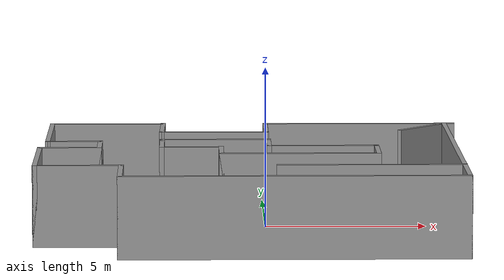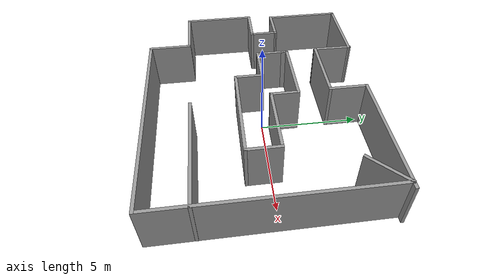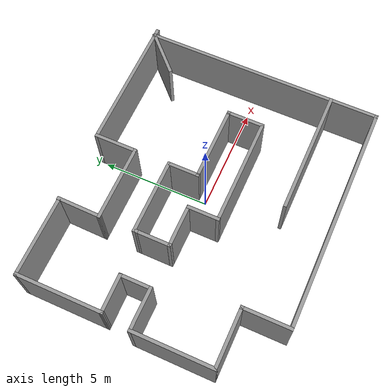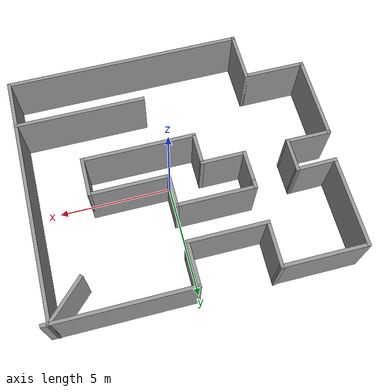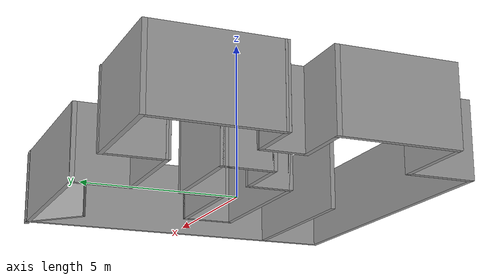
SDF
<?xml version='1.0'?>
<sdf version='1.7'>
  <model name='test2'>
    <pose>-0.407129 -0.162862 0 0 -0 0</pose>
    <link name='Wall_10'>
      <collision name='Wall_10_Collision'>
        <geometry>
          <box>
            <size>1.75 0.15 2.5</size>
          </box>
        </geometry>
        <pose>0 0 1.25 0 -0 0</pose>
      </collision>
      <visual name='Wall_10_Visual'>
        <pose>0 0 1.25 0 -0 0</pose>
        <geometry>
          <box>
            <size>1.75 0.15 2.5</size>
          </box>
        </geometry>
        <material>
          <script>
            <uri>file://media/materials/scripts/gazebo.material</uri>
            <name>Gazebo/Grey</name>
          </script>
          <ambient>1 1 1 1</ambient>
        </material>
        <meta>
          <layer>0</layer>
        </meta>
      </visual>
      <pose>3.88635 -0.216287 0 0 -0 -1.5708</pose>
    </link>
    <link name='Wall_11'>
      <collision name='Wall_11_Collision'>
        <geometry>
          <box>
            <size>5 0.15 2.5</size>
          </box>
        </geometry>
        <pose>0 0 1.25 0 -0 0</pose>
      </collision>
      <visual name='Wall_11_Visual'>
        <pose>0 0 1.25 0 -0 0</pose>
        <geometry>
          <box>
            <size>5 0.15 2.5</size>
          </box>
        </geometry>
        <material>
          <script>
            <uri>file://media/materials/scripts/gazebo.material</uri>
            <name>Gazebo/Grey</name>
          </script>
          <ambient>1 1 1 1</ambient>
        </material>
        <meta>
          <layer>0</layer>
        </meta>
      </visual>
      <pose>1.46135 -1.01629 0 0 -0 3.14159</pose>
    </link>
    <link name='Wall_12'>
      <collision name='Wall_12_Collision'>
        <geometry>
          <box>
            <size>1.5 0.15 2.5</size>
          </box>
        </geometry>
        <pose>0 0 1.25 0 -0 0</pose>
      </collision>
      <visual name='Wall_12_Visual'>
        <pose>0 0 1.25 0 -0 0</pose>
        <geometry>
          <box>
            <size>1.5 0.15 2.5</size>
          </box>
        </geometry>
        <material>
          <script>
            <uri>file://media/materials/scripts/gazebo.material</uri>
            <name>Gazebo/Grey</name>
          </script>
          <ambient>1 1 1 1</ambient>
        </material>
        <meta>
          <layer>0</layer>
        </meta>
      </visual>
      <pose>-0.96365 -0.341287 0 0 -0 1.5708</pose>
    </link>
    <link name='Wall_13'>
      <collision name='Wall_13_Collision'>
        <geometry>
          <box>
            <size>2 0.15 2.5</size>
          </box>
        </geometry>
        <pose>0 0 1.25 0 -0 0</pose>
      </collision>
      <visual name='Wall_13_Visual'>
        <pose>0 0 1.25 0 -0 0</pose>
        <geometry>
          <box>
            <size>2 0.15 2.5</size>
          </box>
        </geometry>
        <material>
          <script>
            <uri>file://media/materials/scripts/gazebo.material</uri>
            <name>Gazebo/Grey</name>
          </script>
          <ambient>1 1 1 1</ambient>
        </material>
        <meta>
          <layer>0</layer>
        </meta>
      </visual>
      <pose>-1.88865 0.333713 0 0 -0 3.14159</pose>
    </link>
    <link name='Wall_14'>
      <collision name='Wall_14_Collision'>
        <geometry>
          <box>
            <size>1.5 0.15 2.5</size>
          </box>
        </geometry>
        <pose>0 0 1.25 0 -0 0</pose>
      </collision>
      <visual name='Wall_14_Visual'>
        <pose>0 0 1.25 0 -0 0</pose>
        <geometry>
          <box>
            <size>1.5 0.15 2.5</size>
          </box>
        </geometry>
        <material>
          <script>
            <uri>file://media/materials/scripts/gazebo.material</uri>
            <name>Gazebo/Grey</name>
          </script>
          <ambient>1 1 1 1</ambient>
        </material>
        <meta>
          <layer>0</layer>
        </meta>
      </visual>
      <pose>-2.81365 1.00871 0 0 -0 1.5708</pose>
    </link>
    <link name='Wall_18'>
      <collision name='Wall_18_Collision'>
        <geometry>
          <box>
            <size>1.5 0.15 2.5</size>
          </box>
        </geometry>
        <pose>0 0 1.25 0 -0 0</pose>
      </collision>
      <visual name='Wall_18_Visual'>
        <pose>0 0 1.25 0 -0 0</pose>
        <geometry>
          <box>
            <size>1.5 0.15 2.5</size>
          </box>
        </geometry>
        <material>
          <script>
            <uri>file://media/materials/scripts/gazebo.material</uri>
            <name>Gazebo/Grey</name>
          </script>
          <ambient>1 1 1 1</ambient>
        </material>
        <meta>
          <layer>0</layer>
        </meta>
      </visual>
      <pose>-4.75576 0.92222 0 0 -0 -1.5708</pose>
    </link>
    <link name='Wall_19'>
      <collision name='Wall_19_Collision'>
        <geometry>
          <box>
            <size>2 0.15 2.5</size>
          </box>
        </geometry>
        <pose>0 0 1.25 0 -0 0</pose>
      </collision>
      <visual name='Wall_19_Visual'>
        <pose>0 0 1.25 0 -0 0</pose>
        <geometry>
          <box>
            <size>2 0.15 2.5</size>
          </box>
        </geometry>
        <material>
          <script>
            <uri>file://media/materials/scripts/gazebo.material</uri>
            <name>Gazebo/Grey</name>
          </script>
          <ambient>1 1 1 1</ambient>
        </material>
        <meta>
          <layer>0</layer>
        </meta>
      </visual>
      <pose>-5.68076 0.24722 0 0 -0 3.14159</pose>
    </link>
    <link name='Wall_20'>
      <collision name='Wall_20_Collision'>
        <geometry>
          <box>
            <size>3.75 0.15 2.5</size>
          </box>
        </geometry>
        <pose>0 0 1.25 0 -0 0</pose>
      </collision>
      <visual name='Wall_20_Visual'>
        <pose>0 0 1.25 0 -0 0</pose>
        <geometry>
          <box>
            <size>3.75 0.15 2.5</size>
          </box>
        </geometry>
        <material>
          <script>
            <uri>file://media/materials/scripts/gazebo.material</uri>
            <name>Gazebo/Grey</name>
          </script>
          <ambient>1 1 1 1</ambient>
        </material>
        <meta>
          <layer>0</layer>
        </meta>
      </visual>
      <pose>-6.60576 -1.55278 0 0 -0 -1.5708</pose>
    </link>
    <link name='Wall_21'>
      <collision name='Wall_21_Collision'>
        <geometry>
          <box>
            <size>2.75 0.15 2.5</size>
          </box>
        </geometry>
        <pose>0 0 1.25 0 -0 0</pose>
      </collision>
      <visual name='Wall_21_Visual'>
        <pose>0 0 1.25 0 -0 0</pose>
        <geometry>
          <box>
            <size>2.75 0.15 2.5</size>
          </box>
        </geometry>
        <material>
          <script>
            <uri>file://media/materials/scripts/gazebo.material</uri>
            <name>Gazebo/Grey</name>
          </script>
          <ambient>1 1 1 1</ambient>
        </material>
        <meta>
          <layer>0</layer>
        </meta>
      </visual>
      <pose>-5.30576 -3.35278 0 0 -0 0</pose>
    </link>
    <link name='Wall_22'>
      <collision name='Wall_22_Collision'>
        <geometry>
          <box>
            <size>2.25 0.15 2.5</size>
          </box>
        </geometry>
        <pose>0 0 1.25 0 -0 0</pose>
      </collision>
      <visual name='Wall_22_Visual'>
        <pose>0 0 1.25 0 -0 0</pose>
        <geometry>
          <box>
            <size>2.25 0.15 2.5</size>
          </box>
        </geometry>
        <material>
          <script>
            <uri>file://media/materials/scripts/gazebo.material</uri>
            <name>Gazebo/Grey</name>
          </script>
          <ambient>1 1 1 1</ambient>
        </material>
        <meta>
          <layer>0</layer>
        </meta>
      </visual>
      <pose>-4.00576 -4.40278 0 0 -0 -1.5708</pose>
    </link>
    <link name='Wall_23'>
      <collision name='Wall_23_Collision'>
        <geometry>
          <box>
            <size>10.5 0.15 2.5</size>
          </box>
        </geometry>
        <pose>0 0 1.25 0 -0 0</pose>
      </collision>
      <visual name='Wall_23_Visual'>
        <pose>0 0 1.25 0 -0 0</pose>
        <geometry>
          <box>
            <size>10.5 0.15 2.5</size>
          </box>
        </geometry>
        <material>
          <script>
            <uri>file://media/materials/scripts/gazebo.material</uri>
            <name>Gazebo/Grey</name>
          </script>
          <ambient>1 1 1 1</ambient>
        </material>
        <meta>
          <layer>0</layer>
        </meta>
      </visual>
      <pose>1.16924 -5.45278 0 0 -0 0</pose>
    </link>
    <link name='Wall_24'>
      <collision name='Wall_24_Collision'>
        <geometry>
          <box>
            <size>11 0.15 2.5</size>
          </box>
        </geometry>
        <pose>0 0 1.25 0 -0 0</pose>
      </collision>
      <visual name='Wall_24_Visual'>
        <pose>0 0 1.25 0 -0 0</pose>
        <geometry>
          <box>
            <size>11 0.15 2.5</size>
          </box>
        </geometry>
        <material>
          <script>
            <uri>file://media/materials/scripts/gazebo.material</uri>
            <name>Gazebo/Grey</name>
          </script>
          <ambient>1 1 1 1</ambient>
        </material>
        <meta>
          <layer>0</layer>
        </meta>
      </visual>
      <pose>6.34424 -0.02778 0 0 -0 1.5708</pose>
    </link>
    <link name='Wall_26'>
      <collision name='Wall_26_Collision'>
        <geometry>
          <box>
            <size>3.5 0.15 2.5</size>
          </box>
        </geometry>
        <pose>0 0 1.25 0 -0 0</pose>
      </collision>
      <visual name='Wall_26_Visual'>
        <pose>0 0 1.25 0 -0 0</pose>
        <geometry>
          <box>
            <size>3.5 0.15 2.5</size>
          </box>
        </geometry>
        <material>
          <script>
            <uri>file://media/materials/scripts/gazebo.material</uri>
            <name>Gazebo/Grey</name>
          </script>
          <ambient>1 1 1 1</ambient>
        </material>
        <meta>
          <layer>0</layer>
        </meta>
      </visual>
      <pose>-1.13865 1.93371 0 0 -0 3.14159</pose>
    </link>
    <link name='Wall_27'>
      <collision name='Wall_27_Collision'>
        <geometry>
          <box>
            <size>0.4 0.15 2.5</size>
          </box>
        </geometry>
        <pose>0 0 1.25 0 -0 0</pose>
      </collision>
      <visual name='Wall_27_Visual'>
        <pose>0 0 1.25 0 -0 0</pose>
        <geometry>
          <box>
            <size>0.4 0.15 2.5</size>
          </box>
        </geometry>
        <material>
          <script>
            <uri>file://media/materials/scripts/gazebo.material</uri>
            <name>Gazebo/Grey</name>
          </script>
          <ambient>1 1 1 1</ambient>
        </material>
        <meta>
          <layer>0</layer>
        </meta>
      </visual>
      <pose>-2.81365 1.80871 0 0 -0 -1.5708</pose>
    </link>
    <link name='Wall_29'>
      <collision name='Wall_29_Collision'>
        <geometry>
          <box>
            <size>3.5 0.15 2.5</size>
          </box>
        </geometry>
        <pose>0 0 1.25 0 -0 0</pose>
      </collision>
      <visual name='Wall_29_Visual'>
        <pose>0 0 1.25 0 -0 0</pose>
        <geometry>
          <box>
            <size>3.5 0.15 2.5</size>
          </box>
        </geometry>
        <material>
          <script>
            <uri>file://media/materials/scripts/gazebo.material</uri>
            <name>Gazebo/Grey</name>
          </script>
          <ambient>1 1 1 1</ambient>
        </material>
        <meta>
          <layer>0</layer>
        </meta>
      </visual>
      <pose>-1.16924 3.54041 0 0 -0 3.14159</pose>
    </link>
    <link name='Wall_30'>
      <collision name='Wall_30_Collision'>
        <geometry>
          <box>
            <size>2.06142 0.15 2.5</size>
          </box>
        </geometry>
        <pose>0 0 1.25 0 -0 0</pose>
      </collision>
      <visual name='Wall_30_Visual'>
        <pose>0 0 1.25 0 -0 0</pose>
        <geometry>
          <box>
            <size>2.06142 0.15 2.5</size>
          </box>
        </geometry>
        <material>
          <script>
            <uri>file://media/materials/scripts/gazebo.material</uri>
            <name>Gazebo/Grey</name>
          </script>
          <ambient>1 1 1 1</ambient>
        </material>
        <meta>
          <layer>0</layer>
        </meta>
      </visual>
      <pose>-2.82895 4.496 0 0 -0 1.55479</pose>
    </link>
    <link name='Wall_31'>
      <collision name='Wall_31_Collision'>
        <geometry>
          <box>
            <size>3.75 0.15 2.5</size>
          </box>
        </geometry>
        <pose>0 0 1.25 0 -0 0</pose>
      </collision>
      <visual name='Wall_31_Visual'>
        <pose>0 0 1.25 0 -0 0</pose>
        <geometry>
          <box>
            <size>3.75 0.15 2.5</size>
          </box>
        </geometry>
        <material>
          <script>
            <uri>file://media/materials/scripts/gazebo.material</uri>
            <name>Gazebo/Grey</name>
          </script>
          <ambient>1 1 1 1</ambient>
        </material>
        <meta>
          <layer>0</layer>
        </meta>
      </visual>
      <pose>-4.61365 5.421 0 0 -0 3.14159</pose>
    </link>
    <link name='Wall_33'>
      <collision name='Wall_33_Collision'>
        <geometry>
          <box>
            <size>4 0.15 2.5</size>
          </box>
        </geometry>
        <pose>0 0 1.25 0 -0 0</pose>
      </collision>
      <visual name='Wall_33_Visual'>
        <pose>0 0 1.25 0 -0 0</pose>
        <geometry>
          <box>
            <size>4 0.15 2.5</size>
          </box>
        </geometry>
        <material>
          <script>
            <uri>file://media/materials/scripts/gazebo.material</uri>
            <name>Gazebo/Grey</name>
          </script>
          <ambient>1 1 1 1</ambient>
        </material>
        <meta>
          <layer>0</layer>
        </meta>
      </visual>
      <pose>-6.41365 3.496 0 0 -0 -1.5708</pose>
    </link>
    <link name='Wall_34'>
      <collision name='Wall_34_Collision'>
        <geometry>
          <box>
            <size>1.8081 0.15 2.5</size>
          </box>
        </geometry>
        <pose>0 0 1.25 0 -0 0</pose>
      </collision>
      <visual name='Wall_34_Visual'>
        <pose>0 0 1.25 0 -0 0</pose>
        <geometry>
          <box>
            <size>1.8081 0.15 2.5</size>
          </box>
        </geometry>
        <material>
          <script>
            <uri>file://media/materials/scripts/gazebo.material</uri>
            <name>Gazebo/Grey</name>
          </script>
          <ambient>1 1 1 1</ambient>
        </material>
        <meta>
          <layer>0</layer>
        </meta>
      </visual>
      <pose>-5.5847 1.58411 0 0 -0 0.015815</pose>
    </link>
    <link name='Wall_36'>
      <collision name='Wall_36_Collision'>
        <geometry>
          <box>
            <size>5.75 0.15 2.5</size>
          </box>
        </geometry>
        <pose>0 0 1.25 0 -0 0</pose>
      </collision>
      <visual name='Wall_36_Visual'>
        <pose>0 0 1.25 0 -0 0</pose>
        <geometry>
          <box>
            <size>5.75 0.15 2.5</size>
          </box>
        </geometry>
        <material>
          <script>
            <uri>file://media/materials/scripts/gazebo.material</uri>
            <name>Gazebo/Grey</name>
          </script>
          <ambient>1 1 1 1</ambient>
        </material>
        <meta>
          <layer>0</layer>
        </meta>
      </visual>
      <pose>3.55048 -3.32781 0 0 -0 0</pose>
    </link>
    <link name='Wall_39'>
      <collision name='Wall_39_Collision'>
        <geometry>
          <box>
            <size>2.25 0.15 2.5</size>
          </box>
        </geometry>
        <pose>0 0 1.25 0 -0 0</pose>
      </collision>
      <visual name='Wall_39_Visual'>
        <pose>0 0 1.25 0 -0 0</pose>
        <geometry>
          <box>
            <size>2.25 0.15 2.5</size>
          </box>
        </geometry>
        <material>
          <script>
            <uri>file://media/materials/scripts/gazebo.material</uri>
            <name>Gazebo/Grey</name>
          </script>
          <ambient>1 1 1 1</ambient>
        </material>
        <meta>
          <layer>0</layer>
        </meta>
      </visual>
      <pose>5.60178 4.65476 0 0 -0 -2.35619</pose>
    </link>
    <link name='Wall_4'>
      <collision name='Wall_4_Collision'>
        <geometry>
          <box>
            <size>6.25 0.15 2.5</size>
          </box>
        </geometry>
        <pose>0 0 1.25 0 -0 0</pose>
      </collision>
      <visual name='Wall_4_Visual'>
        <pose>0 0 1.25 0 -0 0</pose>
        <geometry>
          <box>
            <size>6.25 0.15 2.5</size>
          </box>
        </geometry>
        <material>
          <script>
            <uri>file://media/materials/scripts/gazebo.material</uri>
            <name>Gazebo/Grey</name>
          </script>
          <ambient>1 1 1 1</ambient>
        </material>
        <meta>
          <layer>0</layer>
        </meta>
      </visual>
      <pose>3.55576 5.39041 0 0 -0 0</pose>
    </link>
    <link name='Wall_6'>
      <collision name='Wall_6_Collision'>
        <geometry>
          <box>
            <size>2 0.15 2.5</size>
          </box>
        </geometry>
        <pose>0 0 1.25 0 -0 0</pose>
      </collision>
      <visual name='Wall_6_Visual'>
        <pose>0 0 1.25 0 -0 0</pose>
        <geometry>
          <box>
            <size>2 0.15 2.5</size>
          </box>
        </geometry>
        <material>
          <script>
            <uri>file://media/materials/scripts/gazebo.material</uri>
            <name>Gazebo/Grey</name>
          </script>
          <ambient>1 1 1 1</ambient>
        </material>
        <meta>
          <layer>0</layer>
        </meta>
      </visual>
      <pose>0.50576 4.46541 0 0 -0 -1.5708</pose>
    </link>
    <link name='Wall_8'>
      <collision name='Wall_8_Collision'>
        <geometry>
          <box>
            <size>1.5 0.15 2.5</size>
          </box>
        </geometry>
        <pose>0 0 1.25 0 -0 0</pose>
      </collision>
      <visual name='Wall_8_Visual'>
        <pose>0 0 1.25 0 -0 0</pose>
        <geometry>
          <box>
            <size>1.5 0.15 2.5</size>
          </box>
        </geometry>
        <material>
          <script>
            <uri>file://media/materials/scripts/gazebo.material</uri>
            <name>Gazebo/Grey</name>
          </script>
          <ambient>1 1 1 1</ambient>
        </material>
        <meta>
          <layer>0</layer>
        </meta>
      </visual>
      <pose>0.53635 1.25871 0 0 -0 -1.5708</pose>
    </link>
    <link name='Wall_9'>
      <collision name='Wall_9_Collision'>
        <geometry>
          <box>
            <size>3.5 0.15 2.5</size>
          </box>
        </geometry>
        <pose>0 0 1.25 0 -0 0</pose>
      </collision>
      <visual name='Wall_9_Visual'>
        <pose>0 0 1.25 0 -0 0</pose>
        <geometry>
          <box>
            <size>3.5 0.15 2.5</size>
          </box>
        </geometry>
        <material>
          <script>
            <uri>file://media/materials/scripts/gazebo.material</uri>
            <name>Gazebo/Grey</name>
          </script>
          <ambient>1 1 1 1</ambient>
        </material>
        <meta>
          <layer>0</layer>
        </meta>
      </visual>
      <pose>2.21135 0.583713 0 0 -0 0</pose>
    </link>
    <static>1</static>
  </model>
</sdf>
